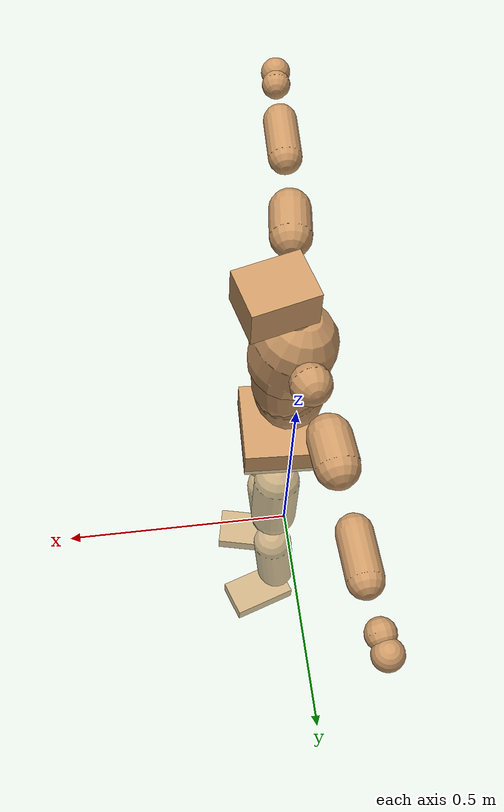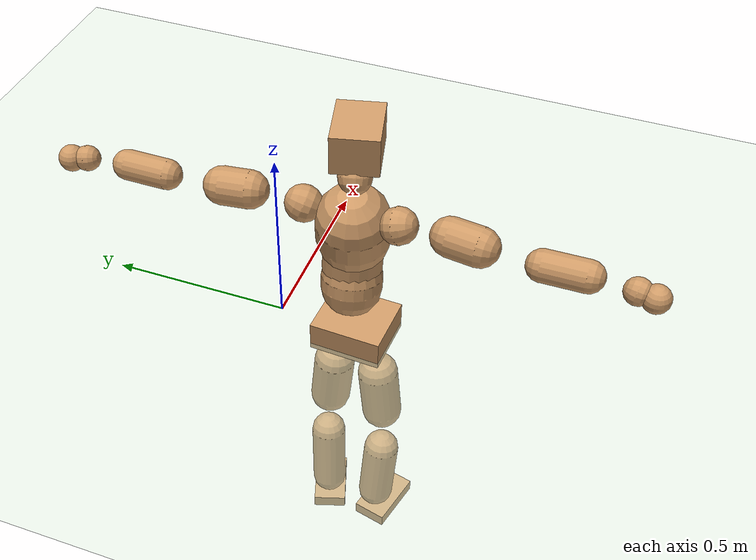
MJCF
<mujoco model="humanoid">
  <compiler coordinate="local" angle="radian"/>
  <default>
    <joint damping="0.0" armature="0.01" stiffness="0.0" limited="true"/>
    <geom conaffinity="1" condim="3" contype="7" margin="0.001" rgba="0.8 0.6 .4 1"/>
  </default>
  <asset>
    <texture type="skybox" builtin="gradient" rgb1=".4 .5 .6" rgb2="0 0 0" width="100" height="100"/>
    <texture builtin="flat" height="1278" mark="cross" markrgb="1 1 1" name="texgeom" random="0.01" rgb1="0.8 0.6 0.4" rgb2="0.8 0.6 0.4" type="cube" width="127"/>
    <texture builtin="checker" height="100" name="texplane" rgb1="0 0 0" rgb2="0.8 0.8 0.8" type="2d" width="100"/>
    <material name="MatPlane" reflectance="0.5" shininess="1" specular="1" texrepeat="60 60" texture="texplane"/>
    <material name="geom" texture="texgeom" texuniform="true"/>
  </asset>
  <worldbody>
    <light cutoff="100" diffuse="1 1 1" dir="-0 0 -1.3" directional="true" exponent="1" pos="0 0 1.3" specular=".1 .1 .1"/>
    <geom conaffinity="1" condim="3" name="floor" pos="0 0 0" rgba="0.8 0.9 0.8 1" size="100 100 .2" type="plane" material="MatPlane"/>
    <body name="Pelvis" pos="-0.0027 -0.2225 0.031">
      <freejoint name="Pelvis"/>
      <geom type="box" contype="1" conaffinity="1" density="5359.375118" pos="-0.0095 0.0004 -0.0072" size="0.0848 0.0977 0.0416" quat="0.9997 0.0000 0.0000 -0.0224" name="Pelvis"/>
      <body name="L_Hip" pos="-0.0117 0.0541 -0.0749">
        <joint name="L_Hip_x" type="hinge" pos="0 0 0" axis="1 0 0" stiffness="1600" damping="160" armature="0.02" range="-180.0000 180.0000"/>
        <joint name="L_Hip_y" type="hinge" pos="0 0 0" axis="0 1 0" stiffness="1600" damping="160" armature="0.02" range="-180.0000 180.0000"/>
        <joint name="L_Hip_z" type="hinge" pos="0 0 0" axis="0 0 1" stiffness="1600" damping="160" armature="0.02" range="-180.0000 180.0000"/>
        <geom type="capsule" contype="1" conaffinity="1" density="2040.816327" size="0.0563" fromto="0.0028 0.0089 -0.0858 0.0078 0.0251 -0.2415" name="L_Hip"/>
        <body name="L_Knee" pos="0.0106 0.034 -0.3273">
          <joint name="L_Knee_x" type="hinge" pos="0 0 0" axis="1 0 0" stiffness="1600" damping="160" armature="0.02" range="-180.0000 180.0000"/>
          <joint name="L_Knee_y" type="hinge" pos="0 0 0" axis="0 1 0" stiffness="1600" damping="160" armature="0.02" range="-180.0000 180.0000"/>
          <joint name="L_Knee_z" type="hinge" pos="0 0 0" axis="0 0 1" stiffness="1600" damping="160" armature="0.02" range="-180.0000 180.0000"/>
          <geom type="capsule" contype="1" conaffinity="1" density="1234.567901" size="0.0496" fromto="-0.0073 -0.0030 -0.0792 -0.0259 -0.0107 -0.2815" name="L_Knee"/>
          <body name="L_Ankle" pos="-0.0333 -0.0138 -0.3607">
            <joint name="L_Ankle_x" type="hinge" pos="0 0 0" axis="1 0 0" stiffness="1600" damping="160" armature="0.02" range="-180.0000 180.0000"/>
            <joint name="L_Ankle_y" type="hinge" pos="0 0 0" axis="0 1 0" stiffness="1600" damping="160" armature="0.02" range="-180.0000 180.0000"/>
            <joint name="L_Ankle_z" type="hinge" pos="0 0 0" axis="0 0 1" stiffness="1600" damping="160" armature="0.02" range="-180.0000 180.0000"/>
            <geom type="box" contype="1" conaffinity="1" density="1000.000002" pos="0.0552 0.0186 -0.0262" size="0.0813 0.0479 0.0197" quat="0.9868 0.0000 0.0000 0.1620" name="L_Ankle"/>
            <body name="L_Toe" pos="0.1104 0.0373 -0.0524">
              <joint name="L_Toe_x" type="hinge" pos="0 0 0" axis="1 0 0" stiffness="1000" damping="100" armature="0.02" range="-180.0000 180.0000"/>
              <joint name="L_Toe_y" type="hinge" pos="0 0 0" axis="0 1 0" stiffness="1000" damping="100" armature="0.02" range="-180.0000 180.0000"/>
              <joint name="L_Toe_z" type="hinge" pos="0 0 0" axis="0 0 1" stiffness="1000" damping="100" armature="0.02" range="-180.0000 180.0000"/>
              <geom type="box" contype="1" conaffinity="1" density="8144654.422029" pos="0.0000 0.0000 0.0251" size="0.001 0.0023 0.0009" quat="0.9859 0.0000 0.0000 0.1672" name="L_Toe"/>
            </body>
          </body>
        </body>
      </body>
      <body name="R_Hip" pos="-0.0057 -0.0556 -0.0839">
        <joint name="R_Hip_x" type="hinge" pos="0 0 0" axis="1 0 0" stiffness="1600" damping="160" armature="0.02" range="-180.0000 180.0000"/>
        <joint name="R_Hip_y" type="hinge" pos="0 0 0" axis="0 1 0" stiffness="1600" damping="160" armature="0.02" range="-180.0000 180.0000"/>
        <joint name="R_Hip_z" type="hinge" pos="0 0 0" axis="0 0 1" stiffness="1600" damping="160" armature="0.02" range="-180.0000 180.0000"/>
        <geom type="capsule" contype="1" conaffinity="1" density="2040.816327" size="0.0558" fromto="-0.0004 -0.0089 -0.0854 -0.0012 -0.0246 -0.2368" name="R_Hip"/>
        <body name="R_Knee" pos="-0.0017 -0.0335 -0.3221">
          <joint name="R_Knee_x" type="hinge" pos="0 0 0" axis="1 0 0" stiffness="1600" damping="160" armature="0.02" range="-180.0000 180.0000"/>
          <joint name="R_Knee_y" type="hinge" pos="0 0 0" axis="0 1 0" stiffness="1600" damping="160" armature="0.02" range="-180.0000 180.0000"/>
          <joint name="R_Knee_z" type="hinge" pos="0 0 0" axis="0 0 1" stiffness="1600" damping="160" armature="0.02" range="-180.0000 180.0000"/>
          <geom type="capsule" contype="1" conaffinity="1" density="1234.567901" size="0.0506" fromto="-0.0072 0.0036 -0.0802 -0.0245 0.0122 -0.2710" name="R_Knee"/>
          <body name="R_Ankle" pos="-0.0317 0.0158 -0.3512">
            <joint name="R_Ankle_x" type="hinge" pos="0 0 0" axis="1 0 0" stiffness="1600" damping="160" armature="0.02" range="-180.0000 180.0000"/>
            <joint name="R_Ankle_y" type="hinge" pos="0 0 0" axis="0 1 0" stiffness="1600" damping="160" armature="0.02" range="-180.0000 180.0000"/>
            <joint name="R_Ankle_z" type="hinge" pos="0 0 0" axis="0 0 1" stiffness="1600" damping="160" armature="0.02" range="-180.0000 180.0000"/>
            <geom type="box" contype="1" conaffinity="1" density="1000.000053" pos="0.0595 -0.0137 -0.0259" size="0.0846 0.0489 0.0194" quat="0.9936 0.0000 0.0000 -0.1125" name="R_Ankle"/>
            <body name="R_Toe" pos="0.119 -0.0273 -0.0518">
              <joint name="R_Toe_x" type="hinge" pos="0 0 0" axis="1 0 0" stiffness="1000" damping="100" armature="0.02" range="-180.0000 180.0000"/>
              <joint name="R_Toe_y" type="hinge" pos="0 0 0" axis="0 1 0" stiffness="1000" damping="100" armature="0.02" range="-180.0000 180.0000"/>
              <joint name="R_Toe_z" type="hinge" pos="0 0 0" axis="0 0 1" stiffness="1000" damping="100" armature="0.02" range="-180.0000 180.0000"/>
              <geom type="box" contype="1" conaffinity="1" density="8223038.411719" pos="0.0000 0.0000 0.0270" size="0.001 0.0024 0.001" quat="0.9947 0.0000 0.0000 -0.1029" name="R_Toe"/>
            </body>
          </body>
        </body>
      </body>
      <body name="Torso" pos="-0.0396 0.0041 0.1156">
        <joint name="Torso_x" type="hinge" pos="0 0 0" axis="1 0 0" stiffness="2000" damping="200" armature="0.02" range="-180.0000 180.0000"/>
        <joint name="Torso_y" type="hinge" pos="0 0 0" axis="0 1 0" stiffness="2000" damping="200" armature="0.02" range="-180.0000 180.0000"/>
        <joint name="Torso_z" type="hinge" pos="0 0 0" axis="0 0 1" stiffness="2000" damping="200" armature="0.02" range="-180.0000 180.0000"/>
        <geom type="capsule" contype="1" conaffinity="1" density="2040.816327" size="0.0802" fromto="0.0142 0.0031 0.0788 0.0081 0.0018 0.0452" name="Torso"/>
        <body name="Spine" pos="0.0223 0.0049 0.124">
          <joint name="Spine_x" type="hinge" pos="0 0 0" axis="1 0 0" stiffness="2000" damping="200" armature="0.02" range="-180.0000 180.0000"/>
          <joint name="Spine_y" type="hinge" pos="0 0 0" axis="0 1 0" stiffness="2000" damping="200" armature="0.02" range="-180.0000 180.0000"/>
          <joint name="Spine_z" type="hinge" pos="0 0 0" axis="0 0 1" stiffness="2000" damping="200" armature="0.02" range="-180.0000 180.0000"/>
          <geom type="capsule" contype="1" conaffinity="1" density="2040.816327" size="0.0776" fromto="0.0047 -0.0026 0.0774 -0.0017 0.0009 -0.0277" name="Spine"/>
          <body name="Chest" pos="0.003 -0.0017 0.0497">
            <joint name="Chest_x" type="hinge" pos="0 0 0" axis="1 0 0" stiffness="2000" damping="200" armature="0.02" range="-180.0000 180.0000"/>
            <joint name="Chest_y" type="hinge" pos="0 0 0" axis="0 1 0" stiffness="2000" damping="200" armature="0.02" range="-180.0000 180.0000"/>
            <joint name="Chest_z" type="hinge" pos="0 0 0" axis="0 0 1" stiffness="2000" damping="200" armature="0.02" range="-180.0000 180.0000"/>
            <geom type="capsule" contype="1" conaffinity="1" density="2040.816327" size="0.095" fromto="-0.0197 -0.0053 0.0928 -0.0074 -0.0020 0.0349" name="Chest"/>
            <body name="Neck" pos="-0.0331 -0.0109 0.1818">
              <joint name="Neck_x" type="hinge" pos="0 0 0" axis="1 0 0" stiffness="1000" damping="100" armature="0.02" range="-180.0000 180.0000"/>
              <joint name="Neck_y" type="hinge" pos="0 0 0" axis="0 1 0" stiffness="1000" damping="100" armature="0.02" range="-180.0000 180.0000"/>
              <joint name="Neck_z" type="hinge" pos="0 0 0" axis="0 0 1" stiffness="1000" damping="100" armature="0.02" range="-180.0000 180.0000"/>
              <geom type="capsule" contype="1" conaffinity="1" density="1000" size="0.0428" fromto="0.0223 0.0048 0.0365 0.0233 0.0051 0.0382" name="Neck"/>
              <body name="Head" pos="0.0456 0.0099 0.0747">
                <joint name="Head_x" type="hinge" pos="0 0 0" axis="1 0 0" stiffness="1000" damping="100" armature="0.02" range="-180.0000 180.0000"/>
                <joint name="Head_y" type="hinge" pos="0 0 0" axis="0 1 0" stiffness="1000" damping="100" armature="0.02" range="-180.0000 180.0000"/>
                <joint name="Head_z" type="hinge" pos="0 0 0" axis="0 0 1" stiffness="1000" damping="100" armature="0.02" range="-180.0000 180.0000"/>
                <geom type="box" contype="1" conaffinity="1" density="2249.999802" pos="0.0238 0.0059 0.0383" size="0.0774 0.0601 0.0506" quat="0.9925 0.0000 0.0000 0.1222" name="Head"/>
              </body>
            </body>
            <body name="L_Thorax" pos="-0.0229 0.0625 0.1011">
              <joint name="L_Thorax_x" type="hinge" pos="0 0 0" axis="1 0 0" stiffness="1000" damping="100" armature="0.02" range="-180.0000 180.0000"/>
              <joint name="L_Thorax_y" type="hinge" pos="0 0 0" axis="0 1 0" stiffness="1000" damping="100" armature="0.02" range="-180.0000 180.0000"/>
              <joint name="L_Thorax_z" type="hinge" pos="0 0 0" axis="0 0 1" stiffness="1000" damping="100" armature="0.02" range="-180.0000 180.0000"/>
              <geom type="capsule" contype="1" conaffinity="1" density="1000" size="0.0473" fromto="-0.0089 0.0554 0.0182 -0.0092 0.0573 0.0189" name="L_Thorax"/>
              <body name="L_Shoulder" pos="-0.0181 0.1127 0.0371">
                <joint name="L_Shoulder_x" type="hinge" pos="0 0 0" axis="1 0 0" stiffness="1000" damping="100" armature="0.02" range="-720.0000 720.0000"/>
                <joint name="L_Shoulder_y" type="hinge" pos="0 0 0" axis="0 1 0" stiffness="1000" damping="100" armature="0.02" range="-720.0000 720.0000"/>
                <joint name="L_Shoulder_z" type="hinge" pos="0 0 0" axis="0 0 1" stiffness="1000" damping="100" armature="0.02" range="-720.0000 720.0000"/>
                <geom type="capsule" contype="1" conaffinity="1" density="1000" size="0.049" fromto="-0.0068 0.0786 -0.0028 -0.0129 0.1487 -0.0053" name="L_Shoulder"/>
                <body name="L_Elbow" pos="-0.0197 0.2273 -0.0081">
                  <joint name="L_Elbow_x" type="hinge" pos="0 0 0" axis="1 0 0" stiffness="1000" damping="100" armature="0.02" range="-720.0000 720.0000"/>
                  <joint name="L_Elbow_y" type="hinge" pos="0 0 0" axis="0 1 0" stiffness="1000" damping="100" armature="0.02" range="-720.0000 720.0000"/>
                  <joint name="L_Elbow_z" type="hinge" pos="0 0 0" axis="0 0 1" stiffness="1000" damping="100" armature="0.02" range="-720.0000 720.0000"/>
                  <geom type="capsule" contype="1" conaffinity="1" density="1000" size="0.039" fromto="-0.0027 0.0689 0.0028 -0.0069 0.1746 0.0072" name="L_Elbow"/>
                  <body name="L_Wrist" pos="-0.0097 0.2435 0.01">
                    <joint name="L_Wrist_x" type="hinge" pos="0 0 0" axis="1 0 0" stiffness="600" damping="60" armature="0.02" range="-180.0000 180.0000"/>
                    <joint name="L_Wrist_y" type="hinge" pos="0 0 0" axis="0 1 0" stiffness="600" damping="60" armature="0.02" range="-180.0000 180.0000"/>
                    <joint name="L_Wrist_z" type="hinge" pos="0 0 0" axis="0 0 1" stiffness="600" damping="60" armature="0.02" range="-180.0000 180.0000"/>
                    <geom type="capsule" contype="1" conaffinity="1" density="1000" size="0.0325" fromto="-0.0073 0.0404 -0.0048 -0.0076 0.0423 -0.0051" name="L_Wrist"/>
                    <body name="L_Hand" pos="-0.0149 0.0827 -0.0099">
                      <joint name="L_Hand_x" type="hinge" pos="0 0 0" axis="1 0 0" stiffness="600" damping="60" armature="0.02" range="-180.0000 180.0000"/>
                      <joint name="L_Hand_y" type="hinge" pos="0 0 0" axis="0 1 0" stiffness="600" damping="60" armature="0.02" range="-180.0000 180.0000"/>
                      <joint name="L_Hand_z" type="hinge" pos="0 0 0" axis="0 0 1" stiffness="600" damping="60" armature="0.02" range="-180.0000 180.0000"/>
                      <geom type="sphere" contype="1" conaffinity="1" density="1000" size="0.0339" pos="0.0000 0.0000 0.0000" name="L_Hand"/>
                    </body>
                  </body>
                </body>
              </body>
            </body>
            <body name="R_Thorax" pos="-0.0253 -0.0734 0.1001">
              <joint name="R_Thorax_x" type="hinge" pos="0 0 0" axis="1 0 0" stiffness="1000" damping="100" armature="0.02" range="-180.0000 180.0000"/>
              <joint name="R_Thorax_y" type="hinge" pos="0 0 0" axis="0 1 0" stiffness="1000" damping="100" armature="0.02" range="-180.0000 180.0000"/>
              <joint name="R_Thorax_z" type="hinge" pos="0 0 0" axis="0 0 1" stiffness="1000" damping="100" armature="0.02" range="-180.0000 180.0000"/>
              <geom type="capsule" contype="1" conaffinity="1" density="1000" size="0.0475" fromto="-0.0041 -0.0506 0.0179 -0.0042 -0.0525 0.0186" name="R_Thorax"/>
              <body name="R_Shoulder" pos="-0.0083 -0.1031 0.0365">
                <joint name="R_Shoulder_x" type="hinge" pos="0 0 0" axis="1 0 0" stiffness="1000" damping="100" armature="0.02" range="-720.0000 720.0000"/>
                <joint name="R_Shoulder_y" type="hinge" pos="0 0 0" axis="0 1 0" stiffness="1000" damping="100" armature="0.02" range="-720.0000 720.0000"/>
                <joint name="R_Shoulder_z" type="hinge" pos="0 0 0" axis="0 0 1" stiffness="1000" damping="100" armature="0.02" range="-720.0000 720.0000"/>
                <geom type="capsule" contype="1" conaffinity="1" density="1000" size="0.0495" fromto="-0.0090 -0.0790 -0.0017 -0.0175 -0.1544 -0.0033" name="R_Shoulder"/>
                <body name="R_Elbow" pos="-0.0265 -0.2334 -0.0049">
                  <joint name="R_Elbow_x" type="hinge" pos="0 0 0" axis="1 0 0" stiffness="1000" damping="100" armature="0.02" range="-720.0000 720.0000"/>
                  <joint name="R_Elbow_y" type="hinge" pos="0 0 0" axis="0 1 0" stiffness="1000" damping="100" armature="0.02" range="-720.0000 720.0000"/>
                  <joint name="R_Elbow_z" type="hinge" pos="0 0 0" axis="0 0 1" stiffness="1000" damping="100" armature="0.02" range="-720.0000 720.0000"/>
                  <geom type="capsule" contype="1" conaffinity="1" density="1000" size="0.0399" fromto="-0.0019 -0.0698 0.0023 -0.0047 -0.1773 0.0059" name="R_Elbow"/>
                  <body name="R_Wrist" pos="-0.0066 -0.2471 0.0082">
                    <joint name="R_Wrist_x" type="hinge" pos="0 0 0" axis="1 0 0" stiffness="600" damping="60" armature="0.02" range="-180.0000 180.0000"/>
                    <joint name="R_Wrist_y" type="hinge" pos="0 0 0" axis="0 1 0" stiffness="600" damping="60" armature="0.02" range="-180.0000 180.0000"/>
                    <joint name="R_Wrist_z" type="hinge" pos="0 0 0" axis="0 0 1" stiffness="600" damping="60" armature="0.02" range="-180.0000 180.0000"/>
                    <geom type="capsule" contype="1" conaffinity="1" density="1000" size="0.0336" fromto="-0.0048 -0.0417 -0.0041 -0.0050 -0.0437 -0.0043" name="R_Wrist"/>
                    <body name="R_Hand" pos="-0.0098 -0.0854 -0.0084">
                      <joint name="R_Hand_x" type="hinge" pos="0 0 0" axis="1 0 0" stiffness="600" damping="60" armature="0.02" range="-180.0000 180.0000"/>
                      <joint name="R_Hand_y" type="hinge" pos="0 0 0" axis="0 1 0" stiffness="600" damping="60" armature="0.02" range="-180.0000 180.0000"/>
                      <joint name="R_Hand_z" type="hinge" pos="0 0 0" axis="0 0 1" stiffness="600" damping="60" armature="0.02" range="-180.0000 180.0000"/>
                      <geom type="sphere" contype="1" conaffinity="1" density="1000" size="0.0348" pos="0.0000 0.0000 0.0000" name="R_Hand"/>
                    </body>
                  </body>
                </body>
              </body>
            </body>
          </body>
        </body>
      </body>
    </body>
  </worldbody>
  <actuator>
    <motor name="L_Hip_x" joint="L_Hip_x" gear="500"/>
    <motor name="L_Hip_y" joint="L_Hip_y" gear="500"/>
    <motor name="L_Hip_z" joint="L_Hip_z" gear="500"/>
    <motor name="L_Knee_x" joint="L_Knee_x" gear="500"/>
    <motor name="L_Knee_y" joint="L_Knee_y" gear="500"/>
    <motor name="L_Knee_z" joint="L_Knee_z" gear="500"/>
    <motor name="L_Ankle_x" joint="L_Ankle_x" gear="500"/>
    <motor name="L_Ankle_y" joint="L_Ankle_y" gear="500"/>
    <motor name="L_Ankle_z" joint="L_Ankle_z" gear="500"/>
    <motor name="L_Toe_x" joint="L_Toe_x" gear="500"/>
    <motor name="L_Toe_y" joint="L_Toe_y" gear="500"/>
    <motor name="L_Toe_z" joint="L_Toe_z" gear="500"/>
    <motor name="R_Hip_x" joint="R_Hip_x" gear="500"/>
    <motor name="R_Hip_y" joint="R_Hip_y" gear="500"/>
    <motor name="R_Hip_z" joint="R_Hip_z" gear="500"/>
    <motor name="R_Knee_x" joint="R_Knee_x" gear="500"/>
    <motor name="R_Knee_y" joint="R_Knee_y" gear="500"/>
    <motor name="R_Knee_z" joint="R_Knee_z" gear="500"/>
    <motor name="R_Ankle_x" joint="R_Ankle_x" gear="500"/>
    <motor name="R_Ankle_y" joint="R_Ankle_y" gear="500"/>
    <motor name="R_Ankle_z" joint="R_Ankle_z" gear="500"/>
    <motor name="R_Toe_x" joint="R_Toe_x" gear="500"/>
    <motor name="R_Toe_y" joint="R_Toe_y" gear="500"/>
    <motor name="R_Toe_z" joint="R_Toe_z" gear="500"/>
    <motor name="Torso_x" joint="Torso_x" gear="500"/>
    <motor name="Torso_y" joint="Torso_y" gear="500"/>
    <motor name="Torso_z" joint="Torso_z" gear="500"/>
    <motor name="Spine_x" joint="Spine_x" gear="500"/>
    <motor name="Spine_y" joint="Spine_y" gear="500"/>
    <motor name="Spine_z" joint="Spine_z" gear="500"/>
    <motor name="Chest_x" joint="Chest_x" gear="500"/>
    <motor name="Chest_y" joint="Chest_y" gear="500"/>
    <motor name="Chest_z" joint="Chest_z" gear="500"/>
    <motor name="Neck_x" joint="Neck_x" gear="500"/>
    <motor name="Neck_y" joint="Neck_y" gear="500"/>
    <motor name="Neck_z" joint="Neck_z" gear="500"/>
    <motor name="Head_x" joint="Head_x" gear="500"/>
    <motor name="Head_y" joint="Head_y" gear="500"/>
    <motor name="Head_z" joint="Head_z" gear="500"/>
    <motor name="L_Thorax_x" joint="L_Thorax_x" gear="500"/>
    <motor name="L_Thorax_y" joint="L_Thorax_y" gear="500"/>
    <motor name="L_Thorax_z" joint="L_Thorax_z" gear="500"/>
    <motor name="L_Shoulder_x" joint="L_Shoulder_x" gear="500"/>
    <motor name="L_Shoulder_y" joint="L_Shoulder_y" gear="500"/>
    <motor name="L_Shoulder_z" joint="L_Shoulder_z" gear="500"/>
    <motor name="L_Elbow_x" joint="L_Elbow_x" gear="500"/>
    <motor name="L_Elbow_y" joint="L_Elbow_y" gear="500"/>
    <motor name="L_Elbow_z" joint="L_Elbow_z" gear="500"/>
    <motor name="L_Wrist_x" joint="L_Wrist_x" gear="500"/>
    <motor name="L_Wrist_y" joint="L_Wrist_y" gear="500"/>
    <motor name="L_Wrist_z" joint="L_Wrist_z" gear="500"/>
    <motor name="L_Hand_x" joint="L_Hand_x" gear="500"/>
    <motor name="L_Hand_y" joint="L_Hand_y" gear="500"/>
    <motor name="L_Hand_z" joint="L_Hand_z" gear="500"/>
    <motor name="R_Thorax_x" joint="R_Thorax_x" gear="500"/>
    <motor name="R_Thorax_y" joint="R_Thorax_y" gear="500"/>
    <motor name="R_Thorax_z" joint="R_Thorax_z" gear="500"/>
    <motor name="R_Shoulder_x" joint="R_Shoulder_x" gear="500"/>
    <motor name="R_Shoulder_y" joint="R_Shoulder_y" gear="500"/>
    <motor name="R_Shoulder_z" joint="R_Shoulder_z" gear="500"/>
    <motor name="R_Elbow_x" joint="R_Elbow_x" gear="500"/>
    <motor name="R_Elbow_y" joint="R_Elbow_y" gear="500"/>
    <motor name="R_Elbow_z" joint="R_Elbow_z" gear="500"/>
    <motor name="R_Wrist_x" joint="R_Wrist_x" gear="500"/>
    <motor name="R_Wrist_y" joint="R_Wrist_y" gear="500"/>
    <motor name="R_Wrist_z" joint="R_Wrist_z" gear="500"/>
    <motor name="R_Hand_x" joint="R_Hand_x" gear="500"/>
    <motor name="R_Hand_y" joint="R_Hand_y" gear="500"/>
    <motor name="R_Hand_z" joint="R_Hand_z" gear="500"/>
  </actuator>
  <contact>
    <exclude body1="Torso" body2="Chest"/>
    <exclude body1="Head" body2="Chest"/>
    <exclude body1="R_Knee" body2="R_Toe"/>
    <exclude body1="R_Knee" body2="L_Ankle"/>
    <exclude body1="R_Knee" body2="L_Toe"/>
    <exclude body1="L_Knee" body2="L_Toe"/>
    <exclude body1="L_Knee" body2="R_Ankle"/>
    <exclude body1="L_Knee" body2="R_Toe"/>
    <exclude body1="L_Shoulder" body2="Chest"/>
    <exclude body1="R_Shoulder" body2="Chest"/>
  </contact>
  <sensor/>
  <size njmax="700" nconmax="700"/>
</mujoco>
